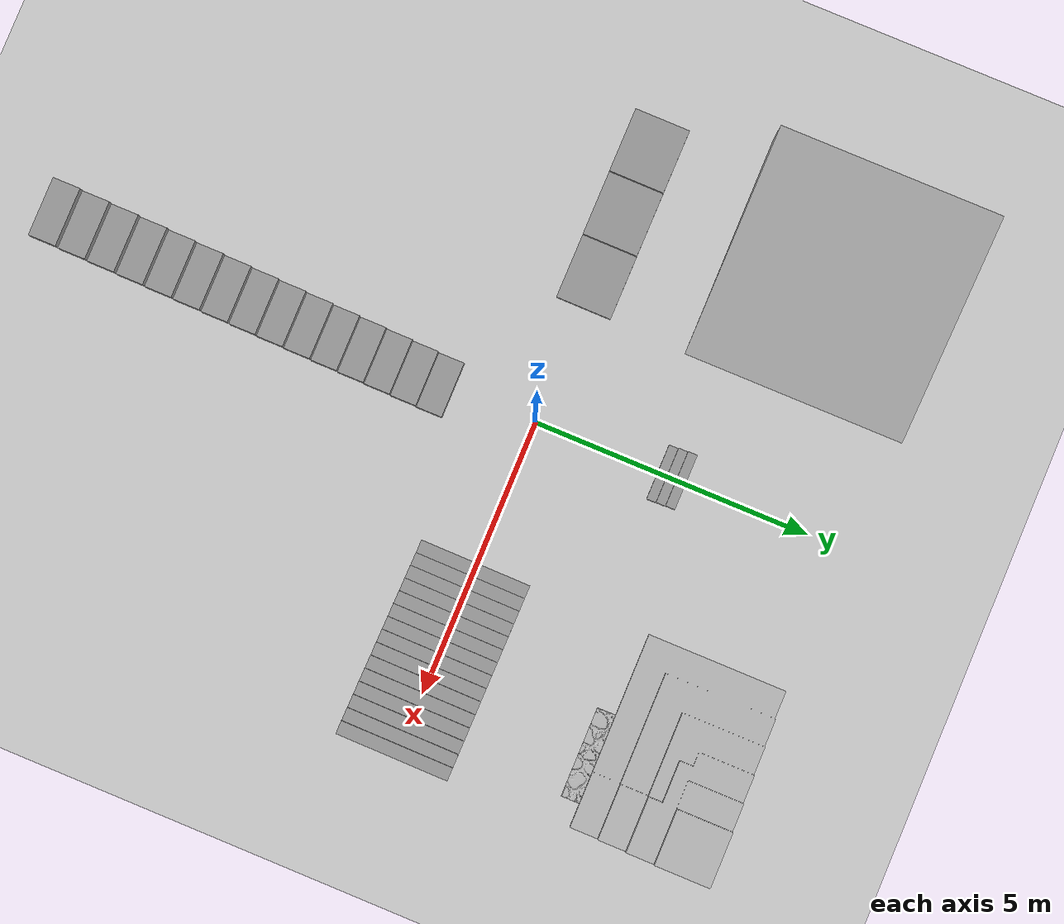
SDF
<sdf version="1.7">
 <world name="default">
  <physics type="ode">
   <max_step_size>0.001</max_step_size>
   <real_time_update_rate>1000</real_time_update_rate>
   <real_time_factor>1</real_time_factor>
   <type>world</type>
   <iters>500</iters>
  </physics>
  <light name="sun" type="directional">
   <pose>0 0 10 0 -0 0</pose>
   <diffuse>0.8 0.8 0.8 1</diffuse>
   <specular>0.2 0.2 0.2 1</specular>
   <attenuation>
    <range>1000</range>
    <constant>0.9</constant>
    <linear>0.01</linear>
    <quadratic>0.001</quadratic>
   </attenuation>
   <direction>-0.5 0.1 -0.9</direction>
   <spot><inner_angle>0</inner_angle><outer_angle>0</outer_angle><falloff>0</falloff></spot>
  </light>
  <model name="ground_plane">
   <static>1</static>
   <link name="link">
    <collision name="collision">
     <geometry><plane><normal>0 0 1</normal><size>100 100</size></plane></geometry>
     <surface>
      <contact><collide_bitmask>65535</collide_bitmask></contact>
      <friction><ode><mu>100</mu><mu2>50</mu2></ode></friction>
     </surface>
    </collision>
    <visual name="visual">
     <cast_shadows>0</cast_shadows>
     <geometry><plane><normal>0 0 1</normal><size>100 100</size></plane></geometry>
     <material>
      <script><uri>file://media/materials/scripts/gazebo.material</uri><name>Gazebo/Grey</name></script>
     </material>
    </visual>
   </link>
  </model>
  <gravity>0 0 -9.8</gravity>
  <magnetic_field>6e-06 2.3e-05 -4.2e-05</magnetic_field>
  <atmosphere type="adiabatic"/>
  <scene><ambient>0.4 0.4 0.4 1</ambient><background>0.7 0.7 0.7 1</background><shadows>1</shadows></scene>
  <spherical_coordinates>
   <surface_model>EARTH_WGS84</surface_model>
   <latitude_deg>0</latitude_deg>
   <longitude_deg>0</longitude_deg>
   <elevation>0</elevation>
   <heading_deg>0</heading_deg>
  </spherical_coordinates>
  <model name="stair4">
   <pose>3.22875 -0.027347 0 0 -0 1.56364</pose>
   <link name="Stairs_0">
    <visual name="Stairs_0_Visual_0">
     <pose>-0 0.508333 0.026667 0 -0 0</pose>
     <geometry><box><size>2 0.233333 0.053333</size></box></geometry>
     <material>
      <script><uri>file://media/materials/scripts/gazebo.material</uri><name>Gazebo/Grey</name></script>
      <ambient>1 1 1 1</ambient>
     </material>
     <meta><layer>0</layer></meta>
    </visual>
    <collision name="Stairs_0_Collision_0">
     <geometry><box><size>2 0.233333 0.053333</size></box></geometry>
     <pose>-0 0.508333 0.026667 0 -0 0</pose>
    </collision>
    <visual name="Stairs_0_Visual_1">
     <pose>-0 0.275 0.08 0 -0 0</pose>
     <geometry><box><size>2 0.233333 0.053333</size></box></geometry>
     <material>
      <script><uri>file://media/materials/scripts/gazebo.material</uri><name>Gazebo/Grey</name></script>
      <ambient>1 1 1 1</ambient>
     </material>
     <meta><layer>0</layer></meta>
    </visual>
    <collision name="Stairs_0_Collision_1">
     <geometry><box><size>2 0.233333 0.053333</size></box></geometry>
     <pose>-0 0.275 0.08 0 -0 0</pose>
    </collision>
    <visual name="Stairs_0_Visual_2">
     <pose>-0 0.041667 0.133333 0 -0 0</pose>
     <geometry><box><size>2 0.233333 0.053333</size></box></geometry>
     <material>
      <script><uri>file://media/materials/scripts/gazebo.material</uri><name>Gazebo/Grey</name></script>
      <ambient>1 1 1 1</ambient>
     </material>
     <meta><layer>0</layer></meta>
    </visual>
    <collision name="Stairs_0_Collision_2">
     <geometry><box><size>2 0.233333 0.053333</size></box></geometry>
     <pose>-0 0.041667 0.133333 0 -0 0</pose>
    </collision>
    <visual name="Stairs_0_Visual_3">
     <pose>-0 -0.191667 0.186667 0 -0 0</pose>
     <geometry><box><size>2 0.233333 0.053333</size></box></geometry>
     <material>
      <script><uri>file://media/materials/scripts/gazebo.material</uri><name>Gazebo/Grey</name></script>
      <ambient>1 1 1 1</ambient>
     </material>
     <meta><layer>0</layer></meta>
    </visual>
    <collision name="Stairs_0_Collision_3">
     <geometry><box><size>2 0.233333 0.053333</size></box></geometry>
     <pose>-0 -0.191667 0.186667 0 -0 0</pose>
    </collision>
    <visual name="Stairs_0_Visual_4">
     <pose>-0 -0.425 0.24 0 -0 0</pose>
     <geometry><box><size>2 0.233333 0.053333</size></box></geometry>
     <material>
      <script><uri>file://media/materials/scripts/gazebo.material</uri><name>Gazebo/Grey</name></script>
      <ambient>1 1 1 1</ambient>
     </material>
     <meta><layer>0</layer></meta>
    </visual>
    <collision name="Stairs_0_Collision_4">
     <geometry><box><size>2 0.233333 0.053333</size></box></geometry>
     <pose>-0 -0.425 0.24 0 -0 0</pose>
    </collision>
    <visual name="Stairs_0_Visual_5">
     <pose>-0 -0.658333 0.293333 0 -0 0</pose>
     <geometry><box><size>2 0.233333 0.053333</size></box></geometry>
     <material>
      <script><uri>file://media/materials/scripts/gazebo.material</uri><name>Gazebo/Grey</name></script>
      <ambient>1 1 1 1</ambient>
     </material>
     <meta><layer>0</layer></meta>
    </visual>
    <collision name="Stairs_0_Collision_5">
     <geometry><box><size>2 0.233333 0.053333</size></box></geometry>
     <pose>-0 -0.658333 0.293333 0 -0 0</pose>
    </collision>
    <visual name="Stairs_0_Visual_6">
     <pose>-0 -0.891667 0.346667 0 -0 0</pose>
     <geometry><box><size>2 0.233333 0.053333</size></box></geometry>
     <material>
      <script><uri>file://media/materials/scripts/gazebo.material</uri><name>Gazebo/Grey</name></script>
      <ambient>1 1 1 1</ambient>
     </material>
     <meta><layer>0</layer></meta>
    </visual>
    <collision name="Stairs_0_Collision_6">
     <geometry><box><size>2 0.233333 0.053333</size></box></geometry>
     <pose>-0 -0.891667 0.346667 0 -0 0</pose>
    </collision>
    <visual name="Stairs_0_Visual_7">
     <pose>-0 -1.125 0.4 0 -0 0</pose>
     <geometry><box><size>2 0.233333 0.053333</size></box></geometry>
     <material>
      <script><uri>file://media/materials/scripts/gazebo.material</uri><name>Gazebo/Grey</name></script>
      <ambient>1 1 1 1</ambient>
     </material>
     <meta><layer>0</layer></meta>
    </visual>
    <collision name="Stairs_0_Collision_7">
     <geometry><box><size>2 0.233333 0.053333</size></box></geometry>
     <pose>-0 -1.125 0.4 0 -0 0</pose>
    </collision>
    <visual name="Stairs_0_Visual_8">
     <pose>-0 -1.35833 0.453333 0 -0 0</pose>
     <geometry><box><size>2 0.233333 0.053333</size></box></geometry>
     <material>
      <script><uri>file://media/materials/scripts/gazebo.material</uri><name>Gazebo/Grey</name></script>
      <ambient>1 1 1 1</ambient>
     </material>
     <meta><layer>0</layer></meta>
    </visual>
    <collision name="Stairs_0_Collision_8">
     <geometry><box><size>2 0.233333 0.053333</size></box></geometry>
     <pose>-0 -1.35833 0.453333 0 -0 0</pose>
    </collision>
    <visual name="Stairs_0_Visual_9">
     <pose>-0 -1.59167 0.506667 0 -0 0</pose>
     <geometry><box><size>2 0.233333 0.053333</size></box></geometry>
     <material>
      <script><uri>file://media/materials/scripts/gazebo.material</uri><name>Gazebo/Grey</name></script>
      <ambient>1 1 1 1</ambient>
     </material>
     <meta><layer>0</layer></meta>
    </visual>
    <collision name="Stairs_0_Collision_9">
     <geometry><box><size>2 0.233333 0.053333</size></box></geometry>
     <pose>-0 -1.59167 0.506667 0 -0 0</pose>
    </collision>
    <visual name="Stairs_0_Visual_10">
     <pose>-0 -1.825 0.56 0 -0 0</pose>
     <geometry><box><size>2 0.233333 0.053333</size></box></geometry>
     <material>
      <script><uri>file://media/materials/scripts/gazebo.material</uri><name>Gazebo/Grey</name></script>
      <ambient>1 1 1 1</ambient>
     </material>
     <meta><layer>0</layer></meta>
    </visual>
    <collision name="Stairs_0_Collision_10">
     <geometry><box><size>2 0.233333 0.053333</size></box></geometry>
     <pose>-0 -1.825 0.56 0 -0 0</pose>
    </collision>
    <visual name="Stairs_0_Visual_11">
     <pose>-0 -2.05833 0.613333 0 -0 0</pose>
     <geometry><box><size>2 0.233333 0.053333</size></box></geometry>
     <material>
      <script><uri>file://media/materials/scripts/gazebo.material</uri><name>Gazebo/Grey</name></script>
      <ambient>1 1 1 1</ambient>
     </material>
     <meta><layer>0</layer></meta>
    </visual>
    <collision name="Stairs_0_Collision_11">
     <geometry><box><size>2 0.233333 0.053333</size></box></geometry>
     <pose>-0 -2.05833 0.613333 0 -0 0</pose>
    </collision>
    <visual name="Stairs_0_Visual_12">
     <pose>-0 -2.29167 0.666667 0 -0 0</pose>
     <geometry><box><size>2 0.233333 0.053333</size></box></geometry>
     <material>
      <script><uri>file://media/materials/scripts/gazebo.material</uri><name>Gazebo/Grey</name></script>
      <ambient>1 1 1 1</ambient>
     </material>
     <meta><layer>0</layer></meta>
    </visual>
    <collision name="Stairs_0_Collision_12">
     <geometry><box><size>2 0.233333 0.053333</size></box></geometry>
     <pose>-0 -2.29167 0.666667 0 -0 0</pose>
    </collision>
    <visual name="Stairs_0_Visual_13">
     <pose>-0 -2.525 0.72 0 -0 0</pose>
     <geometry><box><size>2 0.233333 0.053333</size></box></geometry>
     <material>
      <script><uri>file://media/materials/scripts/gazebo.material</uri><name>Gazebo/Grey</name></script>
      <ambient>1 1 1 1</ambient>
     </material>
     <meta><layer>0</layer></meta>
    </visual>
    <collision name="Stairs_0_Collision_13">
     <geometry><box><size>2 0.233333 0.053333</size></box></geometry>
     <pose>-0 -2.525 0.72 0 -0 0</pose>
    </collision>
    <visual name="Stairs_0_Visual_14">
     <pose>-0 -2.75833 0.773333 0 -0 0</pose>
     <geometry><box><size>2 0.233333 0.053333</size></box></geometry>
     <material>
      <script><uri>file://media/materials/scripts/gazebo.material</uri><name>Gazebo/Grey</name></script>
      <ambient>1 1 1 1</ambient>
     </material>
     <meta><layer>0</layer></meta>
    </visual>
    <collision name="Stairs_0_Collision_14">
     <geometry><box><size>2 0.233333 0.053333</size></box></geometry>
     <pose>-0 -2.75833 0.773333 0 -0 0</pose>
    </collision>
   </link>
   <static>1</static>
  </model>
  <model name="stair3">
   <pose>0.04788 -4.96587 0 0 -0 0</pose>
   <link name="Stairs_0">
    <visual name="Stairs_0_Visual_0">
     <pose>0 3.22667 0.083333 0 -0 0</pose>
     <geometry><box><size>1 0.466667 0.166667</size></box></geometry>
     <material>
      <script><uri>file://media/materials/scripts/gazebo.material</uri><name>Gazebo/Grey</name></script>
      <ambient>1 1 1 1</ambient>
     </material>
     <meta><layer>0</layer></meta>
    </visual>
    <collision name="Stairs_0_Collision_0">
     <geometry><box><size>1 0.466667 0.166667</size></box></geometry>
     <pose>0 3.22667 0.083333 0 -0 0</pose>
    </collision>
    <visual name="Stairs_0_Visual_1">
     <pose>0 2.76 0.25 0 -0 0</pose>
     <geometry><box><size>1 0.466667 0.166667</size></box></geometry>
     <material>
      <script><uri>file://media/materials/scripts/gazebo.material</uri><name>Gazebo/Grey</name></script>
      <ambient>1 1 1 1</ambient>
     </material>
     <meta><layer>0</layer></meta>
    </visual>
    <collision name="Stairs_0_Collision_1">
     <geometry><box><size>1 0.466667 0.166667</size></box></geometry>
     <pose>0 2.76 0.25 0 -0 0</pose>
    </collision>
    <visual name="Stairs_0_Visual_2">
     <pose>0 2.29333 0.416667 0 -0 0</pose>
     <geometry><box><size>1 0.466667 0.166667</size></box></geometry>
     <material>
      <script><uri>file://media/materials/scripts/gazebo.material</uri><name>Gazebo/Grey</name></script>
      <ambient>1 1 1 1</ambient>
     </material>
     <meta><layer>0</layer></meta>
    </visual>
    <collision name="Stairs_0_Collision_2">
     <geometry><box><size>1 0.466667 0.166667</size></box></geometry>
     <pose>0 2.29333 0.416667 0 -0 0</pose>
    </collision>
    <visual name="Stairs_0_Visual_3">
     <pose>0 1.82667 0.583333 0 -0 0</pose>
     <geometry><box><size>1 0.466667 0.166667</size></box></geometry>
     <material>
      <script><uri>file://media/materials/scripts/gazebo.material</uri><name>Gazebo/Grey</name></script>
      <ambient>1 1 1 1</ambient>
     </material>
     <meta><layer>0</layer></meta>
    </visual>
    <collision name="Stairs_0_Collision_3">
     <geometry><box><size>1 0.466667 0.166667</size></box></geometry>
     <pose>0 1.82667 0.583333 0 -0 0</pose>
    </collision>
    <visual name="Stairs_0_Visual_4">
     <pose>0 1.36 0.75 0 -0 0</pose>
     <geometry><box><size>1 0.466667 0.166667</size></box></geometry>
     <material>
      <script><uri>file://media/materials/scripts/gazebo.material</uri><name>Gazebo/Grey</name></script>
      <ambient>1 1 1 1</ambient>
     </material>
     <meta><layer>0</layer></meta>
    </visual>
    <collision name="Stairs_0_Collision_4">
     <geometry><box><size>1 0.466667 0.166667</size></box></geometry>
     <pose>0 1.36 0.75 0 -0 0</pose>
    </collision>
    <visual name="Stairs_0_Visual_5">
     <pose>0 0.893333 0.916667 0 -0 0</pose>
     <geometry><box><size>1 0.466667 0.166667</size></box></geometry>
     <material>
      <script><uri>file://media/materials/scripts/gazebo.material</uri><name>Gazebo/Grey</name></script>
      <ambient>1 1 1 1</ambient>
     </material>
     <meta><layer>0</layer></meta>
    </visual>
    <collision name="Stairs_0_Collision_5">
     <geometry><box><size>1 0.466667 0.166667</size></box></geometry>
     <pose>0 0.893333 0.916667 0 -0 0</pose>
    </collision>
    <visual name="Stairs_0_Visual_6">
     <pose>0 0.426667 1.08333 0 -0 0</pose>
     <geometry><box><size>1 0.466667 0.166667</size></box></geometry>
     <material>
      <script><uri>file://media/materials/scripts/gazebo.material</uri><name>Gazebo/Grey</name></script>
      <ambient>1 1 1 1</ambient>
     </material>
     <meta><layer>0</layer></meta>
    </visual>
    <collision name="Stairs_0_Collision_6">
     <geometry><box><size>1 0.466667 0.166667</size></box></geometry>
     <pose>0 0.426667 1.08333 0 -0 0</pose>
    </collision>
    <visual name="Stairs_0_Visual_7">
     <pose>0 -0.04 1.25 0 -0 0</pose>
     <geometry><box><size>1 0.466667 0.166667</size></box></geometry>
     <material>
      <script><uri>file://media/materials/scripts/gazebo.material</uri><name>Gazebo/Grey</name></script>
      <ambient>1 1 1 1</ambient>
     </material>
     <meta><layer>0</layer></meta>
    </visual>
    <collision name="Stairs_0_Collision_7">
     <geometry><box><size>1 0.466667 0.166667</size></box></geometry>
     <pose>0 -0.04 1.25 0 -0 0</pose>
    </collision>
    <visual name="Stairs_0_Visual_8">
     <pose>0 -0.506667 1.41667 0 -0 0</pose>
     <geometry><box><size>1 0.466667 0.166667</size></box></geometry>
     <material>
      <script><uri>file://media/materials/scripts/gazebo.material</uri><name>Gazebo/Grey</name></script>
      <ambient>1 1 1 1</ambient>
     </material>
     <meta><layer>0</layer></meta>
    </visual>
    <collision name="Stairs_0_Collision_8">
     <geometry><box><size>1 0.466667 0.166667</size></box></geometry>
     <pose>0 -0.506667 1.41667 0 -0 0</pose>
    </collision>
    <visual name="Stairs_0_Visual_9">
     <pose>0 -0.973333 1.58333 0 -0 0</pose>
     <geometry><box><size>1 0.466667 0.166667</size></box></geometry>
     <material>
      <script><uri>file://media/materials/scripts/gazebo.material</uri><name>Gazebo/Grey</name></script>
      <ambient>1 1 1 1</ambient>
     </material>
     <meta><layer>0</layer></meta>
    </visual>
    <collision name="Stairs_0_Collision_9">
     <geometry><box><size>1 0.466667 0.166667</size></box></geometry>
     <pose>0 -0.973333 1.58333 0 -0 0</pose>
    </collision>
    <visual name="Stairs_0_Visual_10">
     <pose>0 -1.44 1.75 0 -0 0</pose>
     <geometry><box><size>1 0.466667 0.166667</size></box></geometry>
     <material>
      <script><uri>file://media/materials/scripts/gazebo.material</uri><name>Gazebo/Grey</name></script>
      <ambient>1 1 1 1</ambient>
     </material>
     <meta><layer>0</layer></meta>
    </visual>
    <collision name="Stairs_0_Collision_10">
     <geometry><box><size>1 0.466667 0.166667</size></box></geometry>
     <pose>0 -1.44 1.75 0 -0 0</pose>
    </collision>
    <visual name="Stairs_0_Visual_11">
     <pose>0 -1.90667 1.91667 0 -0 0</pose>
     <geometry><box><size>1 0.466667 0.166667</size></box></geometry>
     <material>
      <script><uri>file://media/materials/scripts/gazebo.material</uri><name>Gazebo/Grey</name></script>
      <ambient>1 1 1 1</ambient>
     </material>
     <meta><layer>0</layer></meta>
    </visual>
    <collision name="Stairs_0_Collision_11">
     <geometry><box><size>1 0.466667 0.166667</size></box></geometry>
     <pose>0 -1.90667 1.91667 0 -0 0</pose>
    </collision>
    <visual name="Stairs_0_Visual_12">
     <pose>0 -2.37333 2.08333 0 -0 0</pose>
     <geometry><box><size>1 0.466667 0.166667</size></box></geometry>
     <material>
      <script><uri>file://media/materials/scripts/gazebo.material</uri><name>Gazebo/Grey</name></script>
      <ambient>1 1 1 1</ambient>
     </material>
     <meta><layer>0</layer></meta>
    </visual>
    <collision name="Stairs_0_Collision_12">
     <geometry><box><size>1 0.466667 0.166667</size></box></geometry>
     <pose>0 -2.37333 2.08333 0 -0 0</pose>
    </collision>
    <visual name="Stairs_0_Visual_13">
     <pose>0 -2.84 2.25 0 -0 0</pose>
     <geometry><box><size>1 0.466667 0.166667</size></box></geometry>
     <material>
      <script><uri>file://media/materials/scripts/gazebo.material</uri><name>Gazebo/Grey</name></script>
      <ambient>1 1 1 1</ambient>
     </material>
     <meta><layer>0</layer></meta>
    </visual>
    <collision name="Stairs_0_Collision_13">
     <geometry><box><size>1 0.466667 0.166667</size></box></geometry>
     <pose>0 -2.84 2.25 0 -0 0</pose>
    </collision>
    <visual name="Stairs_0_Visual_14">
     <pose>0 -3.30667 2.41667 0 -0 0</pose>
     <geometry><box><size>1 0.466667 0.166667</size></box></geometry>
     <material>
      <script><uri>file://media/materials/scripts/gazebo.material</uri><name>Gazebo/Grey</name></script>
      <ambient>1 1 1 1</ambient>
     </material>
     <meta><layer>0</layer></meta>
    </visual>
    <collision name="Stairs_0_Collision_14">
     <geometry><box><size>1 0.466667 0.166667</size></box></geometry>
     <pose>0 -3.30667 2.41667 0 -0 0</pose>
    </collision>
   </link>
   <static>1</static>
  </model>
  <model name="stair5">
   <pose>-1.60865 1.01836 0 0 -0 3.13734</pose>
   <link name="Stairs_1">
    <visual name="Stairs_1_Visual_0">
     <pose>-1.595 -1.31333 0.05 0 -0 0</pose>
     <geometry><box><size>1 0.166667 0.1</size></box></geometry>
     <material>
      <script><uri>file://media/materials/scripts/gazebo.material</uri><name>Gazebo/Grey</name></script>
      <ambient>1 1 1 1</ambient>
     </material>
     <meta><layer>0</layer></meta>
    </visual>
    <collision name="Stairs_1_Collision_0">
     <geometry><box><size>1 0.166667 0.1</size></box></geometry>
     <pose>-1.595 -1.31333 0.05 0 -0 0</pose>
    </collision>
    <visual name="Stairs_1_Visual_1">
     <pose>-1.595 -1.48 0.15 0 -0 0</pose>
     <geometry><box><size>1 0.166667 0.1</size></box></geometry>
     <material>
      <script><uri>file://media/materials/scripts/gazebo.material</uri><name>Gazebo/Grey</name></script>
      <ambient>1 1 1 1</ambient>
     </material>
     <meta><layer>0</layer></meta>
    </visual>
    <collision name="Stairs_1_Collision_1">
     <geometry><box><size>1 0.166667 0.1</size></box></geometry>
     <pose>-1.595 -1.48 0.15 0 -0 0</pose>
    </collision>
    <visual name="Stairs_1_Visual_2">
     <pose>-1.595 -1.64667 0.25 0 -0 0</pose>
     <geometry><box><size>1 0.166667 0.1</size></box></geometry>
     <material>
      <script><uri>file://media/materials/scripts/gazebo.material</uri><name>Gazebo/Grey</name></script>
      <ambient>1 1 1 1</ambient>
     </material>
     <meta><layer>0</layer></meta>
    </visual>
    <collision name="Stairs_1_Collision_2">
     <geometry><box><size>1 0.166667 0.1</size></box></geometry>
     <pose>-1.595 -1.64667 0.25 0 -0 0</pose>
    </collision>
   </link>
   <static>1</static>
  </model>
  <model name="stair6">
   <pose>-3.15653 -0.743093 0 0 0 -1.57573</pose>
   <link name="Stairs_3">
    <visual name="Stairs_3_Visual_0">
     <pose>-0.75 0.456667 0.033333 0 -0 0</pose>
     <geometry><box><size>1 1.16667 0.066667</size></box></geometry>
     <material>
      <script><uri>file://media/materials/scripts/gazebo.material</uri><name>Gazebo/Grey</name></script>
      <ambient>1 1 1 1</ambient>
     </material>
     <meta><layer>0</layer></meta>
    </visual>
    <collision name="Stairs_3_Collision_0">
     <geometry><box><size>1 1.16667 0.066667</size></box></geometry>
     <pose>-0.75 0.456667 0.033333 0 -0 0</pose>
    </collision>
    <visual name="Stairs_3_Visual_1">
     <pose>-0.75 -0.71 0.1 0 -0 0</pose>
     <geometry><box><size>1 1.16667 0.066667</size></box></geometry>
     <material>
      <script><uri>file://media/materials/scripts/gazebo.material</uri><name>Gazebo/Grey</name></script>
      <ambient>1 1 1 1</ambient>
     </material>
     <meta><layer>0</layer></meta>
    </visual>
    <collision name="Stairs_3_Collision_1">
     <geometry><box><size>1 1.16667 0.066667</size></box></geometry>
     <pose>-0.75 -0.71 0.1 0 -0 0</pose>
    </collision>
    <visual name="Stairs_3_Visual_2">
     <pose>-0.75 -1.87667 0.166667 0 -0 0</pose>
     <geometry><box><size>1 1.16667 0.066667</size></box></geometry>
     <material>
      <script><uri>file://media/materials/scripts/gazebo.material</uri><name>Gazebo/Grey</name></script>
      <ambient>1 1 1 1</ambient>
     </material>
     <meta><layer>0</layer></meta>
    </visual>
    <collision name="Stairs_3_Collision_2">
     <geometry><box><size>1 1.16667 0.066667</size></box></geometry>
     <pose>-0.75 -1.87667 0.166667 0 -0 0</pose>
    </collision>
   </link>
   <static>1</static>
  </model>
  <model name="cobblestones">
   <static>1</static>
   <link name="link">
    <pose>0 0 -0.09 0 -0 1.5708</pose>
    <collision name="collision">
     <geometry>
      <mesh><uri>model://cobblestones_1/mesh/cobblestones.dae</uri><scale>0.175 0.175 0.25</scale></mesh>
     </geometry>
     <surface>
      <bounce><restitution_coefficient>0.01</restitution_coefficient><threshold>5</threshold></bounce>
      <friction><ode><mu>10</mu><mu2>10</mu2></ode></friction>
      <contact><ode><soft_cfm>0.001</soft_cfm><kp>100000</kp><kd>1000</kd></ode></contact>
     </surface>
    </collision>
    <visual name="visual">
     <geometry>
      <mesh><uri>model://cobblestones_1/mesh/cobblestones.dae</uri><scale>0.175 0.175 0.25</scale></mesh>
     </geometry>
    </visual>
   </link>
   <pose>4.87334 3.52949 0 0 -0 0</pose>
  </model>
  <model name="complex_stairs">
   <static>1</static>
   <link name="link">
    <pose>0 0 0 1.57 -0 0</pose>
    <collision name="collision">
     <geometry><mesh><uri>model://complex_stairs_1/mesh/stairs.dae</uri><scale>1 1 1</scale></mesh></geometry>
    </collision>
    <visual name="visual">
     <geometry><mesh><uri>model://complex_stairs_1/mesh/stairs.dae</uri><scale>1 1 1</scale></mesh></geometry>
    </visual>
   </link>
   <pose>2.59649 5.14832 0 0 -0 0</pose>
  </model>
  <model name="15_degree_ramp">
   <static>1</static>
   <link name="link">
    <collision name="collision">
     <geometry><mesh><uri>model://ramp_45/mesh/ramp_45.dae</uri><scale>2 2 0.5358</scale></mesh></geometry>
     <surface><friction><ode><mu>10</mu><mu2>10</mu2></ode></friction></surface>
    </collision>
    <visual name="visual">
     <geometry><mesh><uri>model://ramp_45/mesh/ramp_45.dae</uri><scale>2 2 0.5358</scale></mesh></geometry>
    </visual>
   </link>
   <pose>-4.06174 3.90017 0 0 -0 0</pose>
  </model>
 </world>
</sdf>
